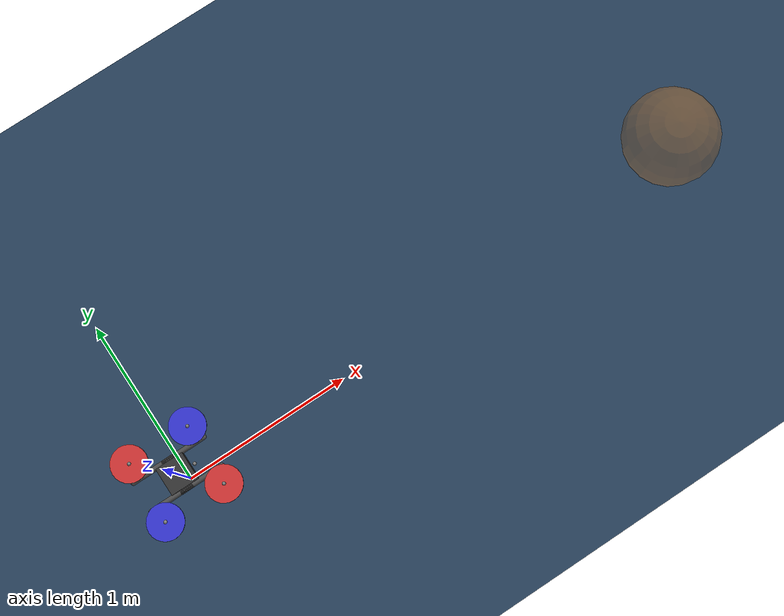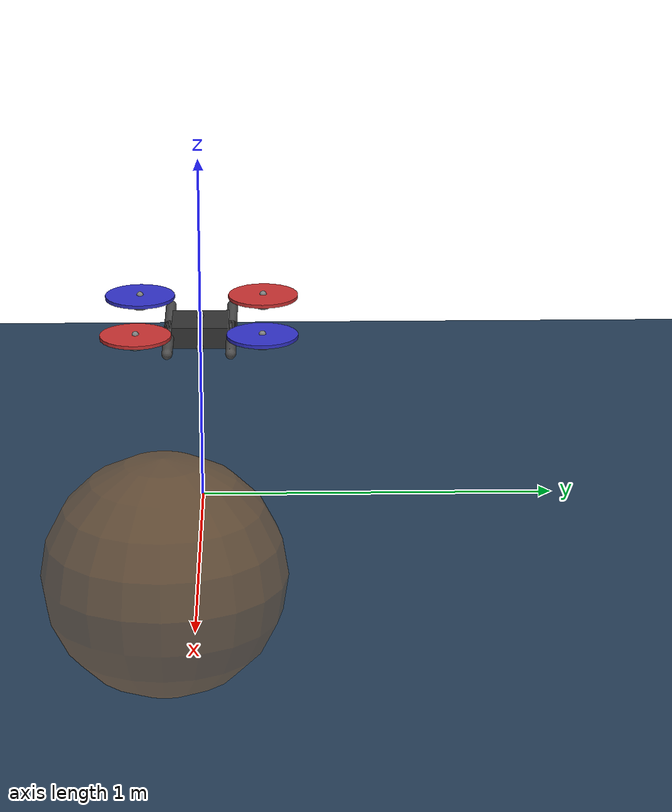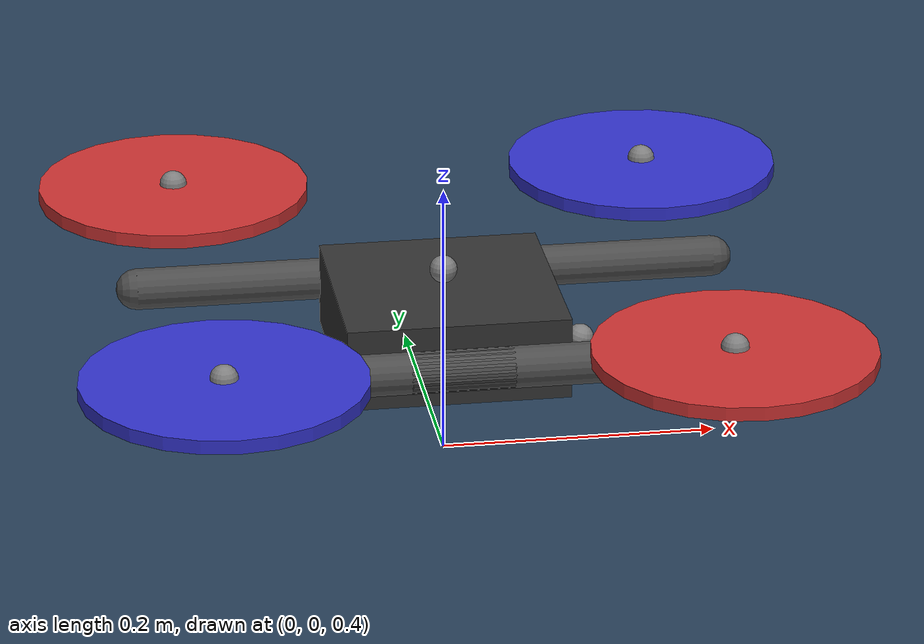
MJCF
<!-- X500 Quadrotor Model for PX4 SITL Integration -->
<!-- Frame: X-configuration, matching PX4 motor layout -->
<!-- Coordinate System: Z-up (converted to NED for MAVLink) -->

<mujoco model="quadrotor_x500">
  <compiler angle="radian" coordinate="local" inertiafromgeom="false"/>

  <option timestep="0.002" gravity="0 0 -9.81" integrator="RK4">
    <flag warmstart="enable"/>
  </option>

  <default>
    <joint armature="0.001" damping="0.01"/>
    <geom contype="1" conaffinity="1" friction="0.8 0.02 0.01"/>
    <motor ctrllimited="true" ctrlrange="0 1"/>
  </default>

  <asset>
    <!-- Ground texture -->
    <texture type="2d" name="grid" builtin="checker" rgb1="0.1 0.2 0.3" rgb2="0.2 0.3 0.4"
             width="512" height="512" mark="edge" markrgb="0.2 0.3 0.4"/>
    <material name="grid" texture="grid" texrepeat="8 8" reflectance="0.1"/>

    <!-- Drone materials -->
    <material name="body_mat" rgba="0.2 0.2 0.2 1"/>
    <material name="arm_mat" rgba="0.3 0.3 0.3 1"/>
    <material name="prop_cw_mat" rgba="0.8 0.2 0.2 1"/>
    <material name="prop_ccw_mat" rgba="0.2 0.2 0.8 1"/>
    <material name="motor_mat" rgba="0.4 0.4 0.4 1"/>

    <!-- Target marker material -->
    <material name="target_mat" rgba="1.0 0.2 0.2 0.8" emission="0.5"/>
    <material name="target_glow_mat" rgba="1.0 0.5 0.0 0.3"/>
  </asset>

  <worldbody>
    <!-- Ground plane -->
    <geom name="ground" type="plane" size="50 50 0.1" material="grid" conaffinity="1" contype="1"/>

    <!-- Light sources -->
    <light name="spotlight" mode="targetbodycom" target="quadrotor"
           diffuse="0.8 0.8 0.8" specular="0.3 0.3 0.3" pos="0 -2 4" cutoff="30"/>
    <light name="ambient" directional="true" diffuse="0.4 0.4 0.4" pos="0 0 5"/>

    <!-- Target marker (mocap body - can be moved without physics) -->
    <body name="target" mocap="true" pos="3 0 1">
      <geom name="target_sphere" type="sphere" size="0.15" material="target_mat"
            contype="0" conaffinity="0"/>
      <geom name="target_glow" type="sphere" size="0.25" material="target_glow_mat"
            contype="0" conaffinity="0"/>
    </body>

    <!-- Quadrotor body -->
    <body name="quadrotor" pos="0 0 0.5">
      <!-- Free joint for 6-DOF motion -->
      <freejoint name="root"/>

      <!-- Inertial properties (X500 frame) -->
      <inertial pos="0 0 0" mass="2.0"
                diaginertia="0.029125 0.029125 0.055225"/>

      <!-- Central body (hub) -->
      <geom name="body_center" type="box" size="0.08 0.08 0.03"
            material="body_mat" mass="0"/>

      <!-- Arms (X-configuration) -->
      <!-- Front-Right arm -->
      <geom name="arm_fr_geom" type="capsule" size="0.015 0.125"
            pos="0.0884 0.0884 0" euler="0 1.5708 0.785"
            material="arm_mat" mass="0"/>

      <!-- Front-Left arm -->
      <geom name="arm_fl_geom" type="capsule" size="0.015 0.125"
            pos="-0.0884 0.0884 0" euler="0 1.5708 -0.785"
            material="arm_mat" mass="0"/>

      <!-- Back-Left arm -->
      <geom name="arm_bl_geom" type="capsule" size="0.015 0.125"
            pos="-0.0884 -0.0884 0" euler="0 1.5708 0.785"
            material="arm_mat" mass="0"/>

      <!-- Back-Right arm -->
      <geom name="arm_br_geom" type="capsule" size="0.015 0.125"
            pos="0.0884 -0.0884 0" euler="0 1.5708 -0.785"
            material="arm_mat" mass="0"/>

      <!-- Motor 1: Front-Left (CCW, positive yaw torque) -->
      <body name="motor1" pos="0.1768 0.1768 0.02">
        <geom name="motor1_body" type="cylinder" size="0.02 0.015"
              material="motor_mat" mass="0"/>
        <geom name="prop1" type="cylinder" size="0.1 0.005" pos="0 0 0.02"
              material="prop_ccw_mat" mass="0" contype="0" conaffinity="0"/>
        <!-- Thrust force application site -->
        <site name="thrust1" pos="0 0 0.025" size="0.01"/>
      </body>

      <!-- Motor 2: Back-Left (CW, negative yaw torque) -->
      <body name="motor2" pos="-0.1768 0.1768 0.02">
        <geom name="motor2_body" type="cylinder" size="0.02 0.015"
              material="motor_mat" mass="0"/>
        <geom name="prop2" type="cylinder" size="0.1 0.005" pos="0 0 0.02"
              material="prop_cw_mat" mass="0" contype="0" conaffinity="0"/>
        <site name="thrust2" pos="0 0 0.025" size="0.01"/>
      </body>

      <!-- Motor 3: Back-Right (CCW, positive yaw torque) -->
      <body name="motor3" pos="-0.1768 -0.1768 0.02">
        <geom name="motor3_body" type="cylinder" size="0.02 0.015"
              material="motor_mat" mass="0"/>
        <geom name="prop3" type="cylinder" size="0.1 0.005" pos="0 0 0.02"
              material="prop_ccw_mat" mass="0" contype="0" conaffinity="0"/>
        <site name="thrust3" pos="0 0 0.025" size="0.01"/>
      </body>

      <!-- Motor 4: Front-Right (CW, negative yaw torque) -->
      <body name="motor4" pos="0.1768 -0.1768 0.02">
        <geom name="motor4_body" type="cylinder" size="0.02 0.015"
              material="motor_mat" mass="0"/>
        <geom name="prop4" type="cylinder" size="0.1 0.005" pos="0 0 0.02"
              material="prop_cw_mat" mass="0" contype="0" conaffinity="0"/>
        <site name="thrust4" pos="0 0 0.025" size="0.01"/>
      </body>

      <!-- IMU sensor site (at center of mass) -->
      <site name="imu" pos="0 0 0" size="0.01"/>

      <!-- GPS antenna site (top of body) -->
      <site name="gps" pos="0 0 0.04" size="0.01"/>

      <!-- Barometer site -->
      <site name="baro" pos="0 0 0.02" size="0.005"/>

      <!-- Magnetometer site -->
      <site name="mag" pos="0 0 0" size="0.005"/>

      <!-- Camera sites (optional) -->
      <site name="camera_front" pos="0.1 0 -0.02" euler="0 0.3 0" size="0.01"/>
      <site name="camera_down" pos="0 0 -0.04" euler="1.5708 0 0" size="0.01"/>
    </body>
  </worldbody>

  <!-- Sensors -->
  <sensor>
    <!-- IMU sensors -->
    <gyro name="gyro" site="imu" noise="0.001"/>
    <accelerometer name="accel" site="imu" noise="0.01"/>

    <!-- Position/velocity sensors (for ground truth) -->
    <framepos name="pos" objtype="site" objname="imu"/>
    <framequat name="quat" objtype="site" objname="imu"/>
    <framelinvel name="linvel" objtype="site" objname="imu"/>
    <frameangvel name="angvel" objtype="site" objname="imu"/>

    <!-- Magnetometer -->
    <magnetometer name="mag" site="mag" noise="0.01"/>
  </sensor>

  <!-- Actuators (motors) -->
  <!-- Each motor produces thrust force along body Z-axis (8N max) -->
  <!-- and yaw torque around body Z-axis (0.08 Nm max) -->
  <!-- Control range 0-1 maps to 0 to max_thrust -->
  <!-- gear = [fx, fy, fz, tx, ty, tz] where fz=thrust, tz=yaw_torque -->
  <actuator>
    <!-- Motor 1: Front-Left (CCW) - positive yaw torque -->
    <general name="motor1" site="thrust1" gear="0 0 8 0 0 0.08"
             ctrllimited="true" ctrlrange="0 1" dyntype="filter" dynprm="0.02"/>

    <!-- Motor 2: Back-Left (CW) - negative yaw torque -->
    <general name="motor2" site="thrust2" gear="0 0 8 0 0 -0.08"
             ctrllimited="true" ctrlrange="0 1" dyntype="filter" dynprm="0.02"/>

    <!-- Motor 3: Back-Right (CCW) - positive yaw torque -->
    <general name="motor3" site="thrust3" gear="0 0 8 0 0 0.08"
             ctrllimited="true" ctrlrange="0 1" dyntype="filter" dynprm="0.02"/>

    <!-- Motor 4: Front-Right (CW) - negative yaw torque -->
    <general name="motor4" site="thrust4" gear="0 0 8 0 0 -0.08"
             ctrllimited="true" ctrlrange="0 1" dyntype="filter" dynprm="0.02"/>
  </actuator>
</mujoco>
